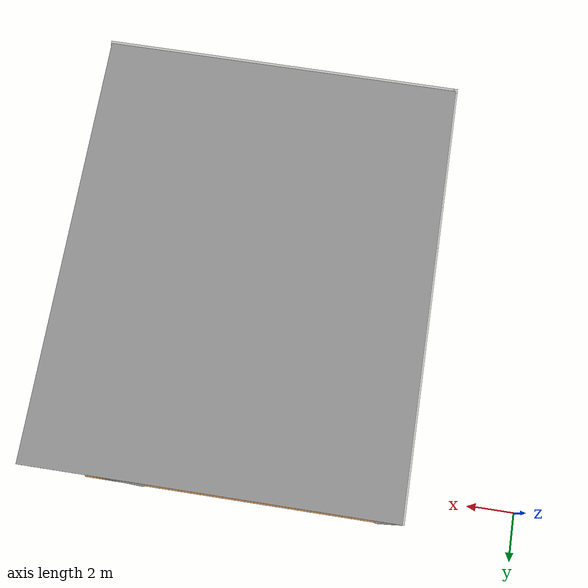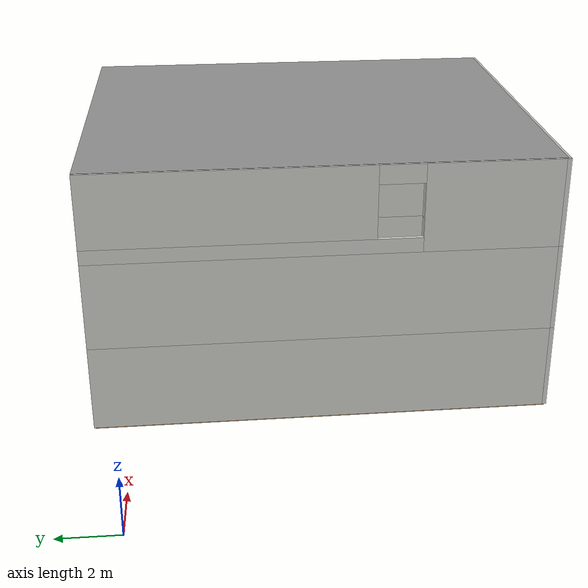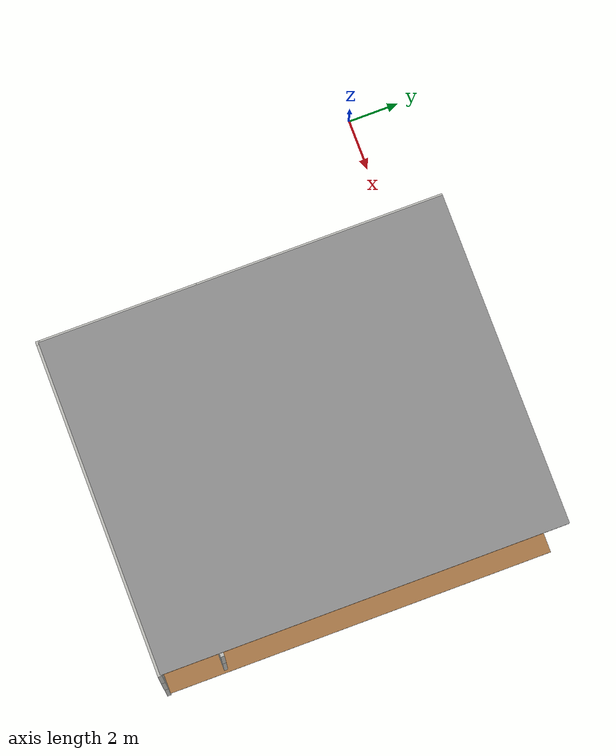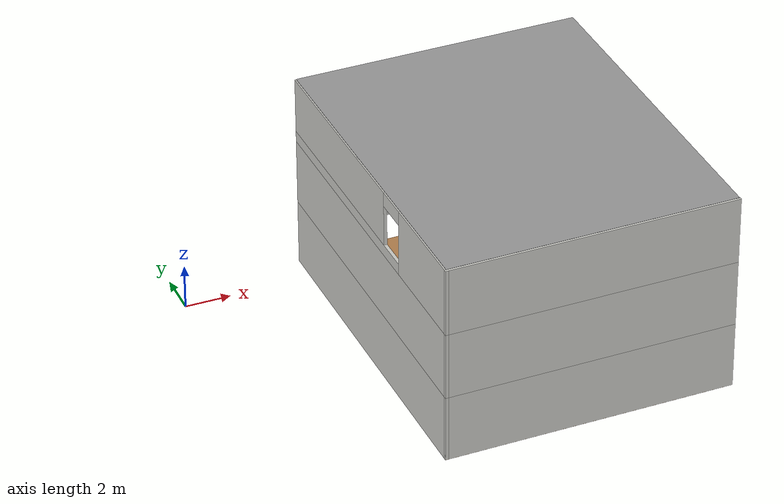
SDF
<sdf version="1.6">
 <model name="add_competition_building">
  <link name="Wall_239">
   <pose>12 -14.1135 0 0 -0 3.14159</pose>
   <visual name="Wall_239_Visual">
    <pose>0 0 1.5 0 -0 0</pose>
    <geometry><box><size>12.75 0.15 3</size></box></geometry>
    <material>
     <script><uri>file://media/materials/scripts/gazebo.material</uri><name>Gazebo/CeilingTiled</name></script>
     <ambient>1 1 1 1</ambient>
     <shader type="pixel"/>
    </material>
    <meta><layer>0</layer></meta>
   </visual>
   <collision name="Wall_239_Collision">
    <pose>0 0 1.5 0 -0 0</pose>
    <geometry><box><size>12.75 0.15 3</size></box></geometry>
    <surface>
     <friction>
      <ode><mu>1</mu><mu2>1</mu2><fdir1>0 0 0</fdir1><slip1>0</slip1><slip2>0</slip2></ode>
      <torsional>
       <coefficient>1</coefficient>
       <patch_radius>0</patch_radius>
       <surface_radius>0</surface_radius>
       <use_patch_radius>1</use_patch_radius>
       <ode><slip>0</slip></ode>
      </torsional>
     </friction>
     <bounce><restitution_coefficient>0</restitution_coefficient><threshold>1e+06</threshold></bounce>
     <contact>
      <collide_without_contact>0</collide_without_contact>
      <collide_without_contact_bitmask>1</collide_without_contact_bitmask>
      <collide_bitmask>1</collide_bitmask>
      <ode>
       <soft_cfm>0</soft_cfm>
       <soft_erp>0.2</soft_erp>
       <kp>1e+13</kp>
       <kd>1</kd>
       <max_vel>0.01</max_vel>
       <min_depth>0</min_depth>
      </ode>
      <bullet>
       <split_impulse>1</split_impulse>
       <split_impulse_penetration_threshold>-0.01</split_impulse_penetration_threshold>
       <soft_cfm>0</soft_cfm>
       <soft_erp>0.2</soft_erp>
       <kp>1e+13</kp>
       <kd>1</kd>
      </bullet>
     </contact>
    </surface>
   </collision>
  </link>
  <link name="Wall_240">
   <pose>5.7 -6.4385 0 0 -0 1.5708</pose>
   <visual name="Wall_240_Visual">
    <pose>0 0 1.5 0 -0 0</pose>
    <geometry><box><size>15.5 0.15 3</size></box></geometry>
    <material>
     <script><uri>file://media/materials/scripts/gazebo.material</uri><name>Gazebo/CeilingTiled</name></script>
     <ambient>1 1 1 1</ambient>
     <shader type="pixel"/>
    </material>
    <meta><layer>0</layer></meta>
   </visual>
   <collision name="Wall_240_Collision">
    <pose>0 0 1.5 0 -0 0</pose>
    <geometry><box><size>15.5 0.15 3</size></box></geometry>
    <surface>
     <friction>
      <ode><mu>1</mu><mu2>1</mu2><fdir1>0 0 0</fdir1><slip1>0</slip1><slip2>0</slip2></ode>
      <torsional>
       <coefficient>1</coefficient>
       <patch_radius>0</patch_radius>
       <surface_radius>0</surface_radius>
       <use_patch_radius>1</use_patch_radius>
       <ode><slip>0</slip></ode>
      </torsional>
     </friction>
     <bounce><restitution_coefficient>0</restitution_coefficient><threshold>1e+06</threshold></bounce>
     <contact>
      <collide_without_contact>0</collide_without_contact>
      <collide_without_contact_bitmask>1</collide_without_contact_bitmask>
      <collide_bitmask>1</collide_bitmask>
      <ode>
       <soft_cfm>0</soft_cfm>
       <soft_erp>0.2</soft_erp>
       <kp>1e+13</kp>
       <kd>1</kd>
       <max_vel>0.01</max_vel>
       <min_depth>0</min_depth>
      </ode>
      <bullet>
       <split_impulse>1</split_impulse>
       <split_impulse_penetration_threshold>-0.01</split_impulse_penetration_threshold>
       <soft_cfm>0</soft_cfm>
       <soft_erp>0.2</soft_erp>
       <kp>1e+13</kp>
       <kd>1</kd>
      </bullet>
     </contact>
    </surface>
   </collision>
  </link>
  <link name="Wall_265">
   <pose>15.8 -5.3135 0 0 0 -1.5708</pose>
   <visual name="Wall_265_Visual_1">
    <pose>-0.034877 0 1.5 0 -0 0</pose>
    <geometry><box><size>5.64365 0.15 3</size></box></geometry>
    <material>
     <script><uri>file://media/materials/scripts/gazebo.material</uri><name>Gazebo/CeilingTiled</name></script>
     <ambient>1 1 1 1</ambient>
     <shader type="pixel"/>
    </material>
    <meta><layer>0</layer></meta>
   </visual>
   <visual name="Wall_265_Visual_3">
    <pose>-3.3067 0 2.5 0 -0 0</pose>
    <geometry><box><size>0.9 0.15 1</size></box></geometry>
    <material>
     <script><uri>file://media/materials/scripts/gazebo.material</uri><name>Gazebo/CeilingTiled</name></script>
     <ambient>1 1 1 1</ambient>
     <shader type="pixel"/>
    </material>
    <meta><layer>0</layer></meta>
   </visual>
   <visual name="Wall_265_Visual_2">
    <pose>5.15597 0 1.5 0 -0 0</pose>
    <geometry><box><size>2.93805 0.15 3</size></box></geometry>
    <material>
     <script><uri>file://media/materials/scripts/gazebo.material</uri><name>Gazebo/CeilingTiled</name></script>
     <ambient>1 1 1 1</ambient>
     <shader type="pixel"/>
    </material>
    <meta><layer>0</layer></meta>
   </visual>
   <visual name="Wall_265_Visual_0">
    <pose>-5.19085 0 1.5 0 -0 0</pose>
    <geometry><box><size>2.8683 0.15 3</size></box></geometry>
    <material>
     <script><uri>file://media/materials/scripts/gazebo.material</uri><name>Gazebo/CeilingTiled</name></script>
     <ambient>1 1 1 1</ambient>
     <shader type="pixel"/>
    </material>
    <meta><layer>0</layer></meta>
   </visual>
   <visual name="Wall_265_Visual_4">
    <pose>3.23695 0 2.5 0 -0 0</pose>
    <geometry><box><size>0.9 0.15 1</size></box></geometry>
    <material>
     <script><uri>file://media/materials/scripts/gazebo.material</uri><name>Gazebo/CeilingTiled</name></script>
     <ambient>1 1 1 1</ambient>
     <shader type="pixel"/>
    </material>
    <meta><layer>0</layer></meta>
   </visual>
   <collision name="Wall_265_Collision_1">
    <pose>-0.034877 0 1.5 0 -0 0</pose>
    <geometry><box><size>5.64365 0.15 3</size></box></geometry>
    <surface>
     <friction>
      <ode><mu>1</mu><mu2>1</mu2><fdir1>0 0 0</fdir1><slip1>0</slip1><slip2>0</slip2></ode>
      <torsional>
       <coefficient>1</coefficient>
       <patch_radius>0</patch_radius>
       <surface_radius>0</surface_radius>
       <use_patch_radius>1</use_patch_radius>
       <ode><slip>0</slip></ode>
      </torsional>
     </friction>
     <bounce><restitution_coefficient>0</restitution_coefficient><threshold>1e+06</threshold></bounce>
     <contact>
      <collide_without_contact>0</collide_without_contact>
      <collide_without_contact_bitmask>1</collide_without_contact_bitmask>
      <collide_bitmask>1</collide_bitmask>
      <ode>
       <soft_cfm>0</soft_cfm>
       <soft_erp>0.2</soft_erp>
       <kp>1e+13</kp>
       <kd>1</kd>
       <max_vel>0.01</max_vel>
       <min_depth>0</min_depth>
      </ode>
      <bullet>
       <split_impulse>1</split_impulse>
       <split_impulse_penetration_threshold>-0.01</split_impulse_penetration_threshold>
       <soft_cfm>0</soft_cfm>
       <soft_erp>0.2</soft_erp>
       <kp>1e+13</kp>
       <kd>1</kd>
      </bullet>
     </contact>
    </surface>
   </collision>
   <collision name="Wall_265_Collision_4">
    <pose>3.23695 0 2.5 0 -0 0</pose>
    <geometry><box><size>0.9 0.15 1</size></box></geometry>
    <surface>
     <friction>
      <ode><mu>1</mu><mu2>1</mu2><fdir1>0 0 0</fdir1><slip1>0</slip1><slip2>0</slip2></ode>
      <torsional>
       <coefficient>1</coefficient>
       <patch_radius>0</patch_radius>
       <surface_radius>0</surface_radius>
       <use_patch_radius>1</use_patch_radius>
       <ode><slip>0</slip></ode>
      </torsional>
     </friction>
     <bounce><restitution_coefficient>0</restitution_coefficient><threshold>1e+06</threshold></bounce>
     <contact>
      <collide_without_contact>0</collide_without_contact>
      <collide_without_contact_bitmask>1</collide_without_contact_bitmask>
      <collide_bitmask>1</collide_bitmask>
      <ode>
       <soft_cfm>0</soft_cfm>
       <soft_erp>0.2</soft_erp>
       <kp>1e+13</kp>
       <kd>1</kd>
       <max_vel>0.01</max_vel>
       <min_depth>0</min_depth>
      </ode>
      <bullet>
       <split_impulse>1</split_impulse>
       <split_impulse_penetration_threshold>-0.01</split_impulse_penetration_threshold>
       <soft_cfm>0</soft_cfm>
       <soft_erp>0.2</soft_erp>
       <kp>1e+13</kp>
       <kd>1</kd>
      </bullet>
     </contact>
    </surface>
   </collision>
   <collision name="Wall_265_Collision_3">
    <pose>-3.3067 0 2.5 0 -0 0</pose>
    <geometry><box><size>0.9 0.15 1</size></box></geometry>
    <surface>
     <friction>
      <ode><mu>1</mu><mu2>1</mu2><fdir1>0 0 0</fdir1><slip1>0</slip1><slip2>0</slip2></ode>
      <torsional>
       <coefficient>1</coefficient>
       <patch_radius>0</patch_radius>
       <surface_radius>0</surface_radius>
       <use_patch_radius>1</use_patch_radius>
       <ode><slip>0</slip></ode>
      </torsional>
     </friction>
     <bounce><restitution_coefficient>0</restitution_coefficient><threshold>1e+06</threshold></bounce>
     <contact>
      <collide_without_contact>0</collide_without_contact>
      <collide_without_contact_bitmask>1</collide_without_contact_bitmask>
      <collide_bitmask>1</collide_bitmask>
      <ode>
       <soft_cfm>0</soft_cfm>
       <soft_erp>0.2</soft_erp>
       <kp>1e+13</kp>
       <kd>1</kd>
       <max_vel>0.01</max_vel>
       <min_depth>0</min_depth>
      </ode>
      <bullet>
       <split_impulse>1</split_impulse>
       <split_impulse_penetration_threshold>-0.01</split_impulse_penetration_threshold>
       <soft_cfm>0</soft_cfm>
       <soft_erp>0.2</soft_erp>
       <kp>1e+13</kp>
       <kd>1</kd>
      </bullet>
     </contact>
    </surface>
   </collision>
   <collision name="Wall_265_Collision_0">
    <pose>-5.19085 0 1.5 0 -0 0</pose>
    <geometry><box><size>2.8683 0.15 3</size></box></geometry>
    <surface>
     <friction>
      <ode><mu>1</mu><mu2>1</mu2><fdir1>0 0 0</fdir1><slip1>0</slip1><slip2>0</slip2></ode>
      <torsional>
       <coefficient>1</coefficient>
       <patch_radius>0</patch_radius>
       <surface_radius>0</surface_radius>
       <use_patch_radius>1</use_patch_radius>
       <ode><slip>0</slip></ode>
      </torsional>
     </friction>
     <bounce><restitution_coefficient>0</restitution_coefficient><threshold>1e+06</threshold></bounce>
     <contact>
      <collide_without_contact>0</collide_without_contact>
      <collide_without_contact_bitmask>1</collide_without_contact_bitmask>
      <collide_bitmask>1</collide_bitmask>
      <ode>
       <soft_cfm>0</soft_cfm>
       <soft_erp>0.2</soft_erp>
       <kp>1e+13</kp>
       <kd>1</kd>
       <max_vel>0.01</max_vel>
       <min_depth>0</min_depth>
      </ode>
      <bullet>
       <split_impulse>1</split_impulse>
       <split_impulse_penetration_threshold>-0.01</split_impulse_penetration_threshold>
       <soft_cfm>0</soft_cfm>
       <soft_erp>0.2</soft_erp>
       <kp>1e+13</kp>
       <kd>1</kd>
      </bullet>
     </contact>
    </surface>
   </collision>
   <collision name="Wall_265_Collision_2">
    <pose>5.15597 0 1.5 0 -0 0</pose>
    <geometry><box><size>2.93805 0.15 3</size></box></geometry>
    <surface>
     <friction>
      <ode><mu>1</mu><mu2>1</mu2><fdir1>0 0 0</fdir1><slip1>0</slip1><slip2>0</slip2></ode>
      <torsional>
       <coefficient>1</coefficient>
       <patch_radius>0</patch_radius>
       <surface_radius>0</surface_radius>
       <use_patch_radius>1</use_patch_radius>
       <ode><slip>0</slip></ode>
      </torsional>
     </friction>
     <bounce><restitution_coefficient>0</restitution_coefficient><threshold>1e+06</threshold></bounce>
     <contact>
      <collide_without_contact>0</collide_without_contact>
      <collide_without_contact_bitmask>1</collide_without_contact_bitmask>
      <collide_bitmask>1</collide_bitmask>
      <ode>
       <soft_cfm>0</soft_cfm>
       <soft_erp>0.2</soft_erp>
       <kp>1e+13</kp>
       <kd>1</kd>
       <max_vel>0.01</max_vel>
       <min_depth>0</min_depth>
      </ode>
      <bullet>
       <split_impulse>1</split_impulse>
       <split_impulse_penetration_threshold>-0.01</split_impulse_penetration_threshold>
       <soft_cfm>0</soft_cfm>
       <soft_erp>0.2</soft_erp>
       <kp>1e+13</kp>
       <kd>1</kd>
      </bullet>
     </contact>
    </surface>
   </collision>
  </link>
  <link name="Wall_267">
   <pose>11.9681 -11.7825 0 0 -0 3.14159</pose>
   <visual name="Wall_267_Visual">
    <pose>0 0 1.5 0 -0 0</pose>
    <geometry><box><size>12.5 0.15 3</size></box></geometry>
    <material>
     <script><uri>file://media/materials/scripts/gazebo.material</uri><name>Gazebo/CeilingTiled</name></script>
     <ambient>1 1 1 1</ambient>
     <shader type="pixel"/>
    </material>
    <meta><layer>0</layer></meta>
   </visual>
   <collision name="Wall_267_Collision">
    <pose>0 0 1.5 0 -0 0</pose>
    <geometry><box><size>12.5 0.15 3</size></box></geometry>
    <surface>
     <friction>
      <ode><mu>1</mu><mu2>1</mu2><fdir1>0 0 0</fdir1><slip1>0</slip1><slip2>0</slip2></ode>
      <torsional>
       <coefficient>1</coefficient>
       <patch_radius>0</patch_radius>
       <surface_radius>0</surface_radius>
       <use_patch_radius>1</use_patch_radius>
       <ode><slip>0</slip></ode>
      </torsional>
     </friction>
     <bounce><restitution_coefficient>0</restitution_coefficient><threshold>1e+06</threshold></bounce>
     <contact>
      <collide_without_contact>0</collide_without_contact>
      <collide_without_contact_bitmask>1</collide_without_contact_bitmask>
      <collide_bitmask>1</collide_bitmask>
      <ode>
       <soft_cfm>0</soft_cfm>
       <soft_erp>0.2</soft_erp>
       <kp>1e+13</kp>
       <kd>1</kd>
       <max_vel>0.01</max_vel>
       <min_depth>0</min_depth>
      </ode>
      <bullet>
       <split_impulse>1</split_impulse>
       <split_impulse_penetration_threshold>-0.01</split_impulse_penetration_threshold>
       <soft_cfm>0</soft_cfm>
       <soft_erp>0.2</soft_erp>
       <kp>1e+13</kp>
       <kd>1</kd>
      </bullet>
     </contact>
    </surface>
   </collision>
  </link>
  <link name="Wall_279">
   <pose>12 -14.1135 3 0 -0 3.14159</pose>
   <visual name="Wall_279_Visual">
    <pose>0 0 1.5 0 -0 0</pose>
    <geometry><box><size>12.75 0.15 3</size></box></geometry>
    <material>
     <script><uri>file://media/materials/scripts/gazebo.material</uri><name>Gazebo/CeilingTiled</name></script>
     <ambient>1 1 1 1</ambient>
     <shader type="pixel"/>
    </material>
    <meta><layer>1</layer></meta>
   </visual>
   <collision name="Wall_279_Collision">
    <pose>0 0 1.5 0 -0 0</pose>
    <geometry><box><size>12.75 0.15 3</size></box></geometry>
    <surface>
     <friction>
      <ode><mu>1</mu><mu2>1</mu2><fdir1>0 0 0</fdir1><slip1>0</slip1><slip2>0</slip2></ode>
      <torsional>
       <coefficient>1</coefficient>
       <patch_radius>0</patch_radius>
       <surface_radius>0</surface_radius>
       <use_patch_radius>1</use_patch_radius>
       <ode><slip>0</slip></ode>
      </torsional>
     </friction>
     <bounce><restitution_coefficient>0</restitution_coefficient><threshold>1e+06</threshold></bounce>
     <contact>
      <collide_without_contact>0</collide_without_contact>
      <collide_without_contact_bitmask>1</collide_without_contact_bitmask>
      <collide_bitmask>1</collide_bitmask>
      <ode>
       <soft_cfm>0</soft_cfm>
       <soft_erp>0.2</soft_erp>
       <kp>1e+13</kp>
       <kd>1</kd>
       <max_vel>0.01</max_vel>
       <min_depth>0</min_depth>
      </ode>
      <bullet>
       <split_impulse>1</split_impulse>
       <split_impulse_penetration_threshold>-0.01</split_impulse_penetration_threshold>
       <soft_cfm>0</soft_cfm>
       <soft_erp>0.2</soft_erp>
       <kp>1e+13</kp>
       <kd>1</kd>
      </bullet>
     </contact>
    </surface>
   </collision>
  </link>
  <link name="Wall_280">
   <pose>5.7 -6.4385 3 0 -0 1.5708</pose>
   <visual name="Wall_280_Visual">
    <pose>0 0 1.5 0 -0 0</pose>
    <geometry><box><size>15.5 0.15 3</size></box></geometry>
    <material>
     <script><uri>file://media/materials/scripts/gazebo.material</uri><name>Gazebo/CeilingTiled</name></script>
     <ambient>1 1 1 1</ambient>
     <shader type="pixel"/>
    </material>
    <meta><layer>1</layer></meta>
   </visual>
   <collision name="Wall_280_Collision">
    <pose>0 0 1.5 0 -0 0</pose>
    <geometry><box><size>15.5 0.15 3</size></box></geometry>
    <surface>
     <friction>
      <ode><mu>1</mu><mu2>1</mu2><fdir1>0 0 0</fdir1><slip1>0</slip1><slip2>0</slip2></ode>
      <torsional>
       <coefficient>1</coefficient>
       <patch_radius>0</patch_radius>
       <surface_radius>0</surface_radius>
       <use_patch_radius>1</use_patch_radius>
       <ode><slip>0</slip></ode>
      </torsional>
     </friction>
     <bounce><restitution_coefficient>0</restitution_coefficient><threshold>1e+06</threshold></bounce>
     <contact>
      <collide_without_contact>0</collide_without_contact>
      <collide_without_contact_bitmask>1</collide_without_contact_bitmask>
      <collide_bitmask>1</collide_bitmask>
      <ode>
       <soft_cfm>0</soft_cfm>
       <soft_erp>0.2</soft_erp>
       <kp>1e+13</kp>
       <kd>1</kd>
       <max_vel>0.01</max_vel>
       <min_depth>0</min_depth>
      </ode>
      <bullet>
       <split_impulse>1</split_impulse>
       <split_impulse_penetration_threshold>-0.01</split_impulse_penetration_threshold>
       <soft_cfm>0</soft_cfm>
       <soft_erp>0.2</soft_erp>
       <kp>1e+13</kp>
       <kd>1</kd>
      </bullet>
     </contact>
    </surface>
   </collision>
  </link>
  <link name="Wall_296">
   <pose>15.8 -5.3135 3 0 0 -1.5708</pose>
   <visual name="Wall_296_Visual">
    <pose>0 0 1.5 0 -0 0</pose>
    <geometry><box><size>13.25 0.15 3</size></box></geometry>
    <material>
     <script><uri>file://media/materials/scripts/gazebo.material</uri><name>Gazebo/CeilingTiled</name></script>
     <ambient>1 1 1 1</ambient>
     <shader type="pixel"/>
    </material>
    <meta><layer>1</layer></meta>
   </visual>
   <collision name="Wall_296_Collision">
    <pose>0 0 1.5 0 -0 0</pose>
    <geometry><box><size>13.25 0.15 3</size></box></geometry>
    <surface>
     <friction>
      <ode><mu>1</mu><mu2>1</mu2><fdir1>0 0 0</fdir1><slip1>0</slip1><slip2>0</slip2></ode>
      <torsional>
       <coefficient>1</coefficient>
       <patch_radius>0</patch_radius>
       <surface_radius>0</surface_radius>
       <use_patch_radius>1</use_patch_radius>
       <ode><slip>0</slip></ode>
      </torsional>
     </friction>
     <bounce><restitution_coefficient>0</restitution_coefficient><threshold>1e+06</threshold></bounce>
     <contact>
      <collide_without_contact>0</collide_without_contact>
      <collide_without_contact_bitmask>1</collide_without_contact_bitmask>
      <collide_bitmask>1</collide_bitmask>
      <ode>
       <soft_cfm>0</soft_cfm>
       <soft_erp>0.2</soft_erp>
       <kp>1e+13</kp>
       <kd>1</kd>
       <max_vel>0.01</max_vel>
       <min_depth>0</min_depth>
      </ode>
      <bullet>
       <split_impulse>1</split_impulse>
       <split_impulse_penetration_threshold>-0.01</split_impulse_penetration_threshold>
       <soft_cfm>0</soft_cfm>
       <soft_erp>0.2</soft_erp>
       <kp>1e+13</kp>
       <kd>1</kd>
      </bullet>
     </contact>
    </surface>
   </collision>
  </link>
  <link name="Wall_297">
   <pose>11.9681 -11.7825 3 0 -0 3.14159</pose>
   <visual name="Wall_297_Visual">
    <pose>0 0 1.5 0 -0 0</pose>
    <geometry><box><size>12.5 0.15 3</size></box></geometry>
    <material>
     <script><uri>file://media/materials/scripts/gazebo.material</uri><name>Gazebo/CeilingTiled</name></script>
     <ambient>1 1 1 1</ambient>
     <shader type="pixel"/>
    </material>
    <meta><layer>1</layer></meta>
   </visual>
   <collision name="Wall_297_Collision">
    <pose>0 0 1.5 0 -0 0</pose>
    <geometry><box><size>12.5 0.15 3</size></box></geometry>
    <surface>
     <friction>
      <ode><mu>1</mu><mu2>1</mu2><fdir1>0 0 0</fdir1><slip1>0</slip1><slip2>0</slip2></ode>
      <torsional>
       <coefficient>1</coefficient>
       <patch_radius>0</patch_radius>
       <surface_radius>0</surface_radius>
       <use_patch_radius>1</use_patch_radius>
       <ode><slip>0</slip></ode>
      </torsional>
     </friction>
     <bounce><restitution_coefficient>0</restitution_coefficient><threshold>1e+06</threshold></bounce>
     <contact>
      <collide_without_contact>0</collide_without_contact>
      <collide_without_contact_bitmask>1</collide_without_contact_bitmask>
      <collide_bitmask>1</collide_bitmask>
      <ode>
       <soft_cfm>0</soft_cfm>
       <soft_erp>0.2</soft_erp>
       <kp>1e+13</kp>
       <kd>1</kd>
       <max_vel>0.01</max_vel>
       <min_depth>0</min_depth>
      </ode>
      <bullet>
       <split_impulse>1</split_impulse>
       <split_impulse_penetration_threshold>-0.01</split_impulse_penetration_threshold>
       <soft_cfm>0</soft_cfm>
       <soft_erp>0.2</soft_erp>
       <kp>1e+13</kp>
       <kd>1</kd>
      </bullet>
     </contact>
    </surface>
   </collision>
  </link>
  <link name="Wall_334">
   <pose>12 -14.1135 6 0 -0 3.14159</pose>
   <visual name="Wall_334_Visual">
    <pose>0 0 1.5 0 -0 0</pose>
    <geometry><box><size>12.75 0.15 3</size></box></geometry>
    <material>
     <script><uri>file://media/materials/scripts/gazebo.material</uri><name>Gazebo/CeilingTiled</name></script>
     <ambient>1 1 1 1</ambient>
     <shader type="pixel"/>
    </material>
    <meta><layer>2</layer></meta>
   </visual>
   <collision name="Wall_334_Collision">
    <pose>0 0 1.5 0 -0 0</pose>
    <geometry><box><size>12.75 0.15 3</size></box></geometry>
    <surface>
     <friction>
      <ode><mu>1</mu><mu2>1</mu2><fdir1>0 0 0</fdir1><slip1>0</slip1><slip2>0</slip2></ode>
      <torsional>
       <coefficient>1</coefficient>
       <patch_radius>0</patch_radius>
       <surface_radius>0</surface_radius>
       <use_patch_radius>1</use_patch_radius>
       <ode><slip>0</slip></ode>
      </torsional>
     </friction>
     <bounce><restitution_coefficient>0</restitution_coefficient><threshold>1e+06</threshold></bounce>
     <contact>
      <collide_without_contact>0</collide_without_contact>
      <collide_without_contact_bitmask>1</collide_without_contact_bitmask>
      <collide_bitmask>1</collide_bitmask>
      <ode>
       <soft_cfm>0</soft_cfm>
       <soft_erp>0.2</soft_erp>
       <kp>1e+13</kp>
       <kd>1</kd>
       <max_vel>0.01</max_vel>
       <min_depth>0</min_depth>
      </ode>
      <bullet>
       <split_impulse>1</split_impulse>
       <split_impulse_penetration_threshold>-0.01</split_impulse_penetration_threshold>
       <soft_cfm>0</soft_cfm>
       <soft_erp>0.2</soft_erp>
       <kp>1e+13</kp>
       <kd>1</kd>
      </bullet>
     </contact>
    </surface>
   </collision>
  </link>
  <link name="Wall_335">
   <pose>5.7 -6.4385 6 0 -0 1.5708</pose>
   <visual name="Wall_335_Visual_1">
    <pose>2.29836 0 0.25 0 -0 0</pose>
    <geometry><box><size>10.9033 0.15 0.5</size></box></geometry>
    <material>
     <script><uri>file://media/materials/scripts/gazebo.material</uri><name>Gazebo/CeilingTiled</name></script>
     <ambient>1 1 1 1</ambient>
     <shader type="pixel"/>
    </material>
    <meta><layer>2</layer></meta>
   </visual>
   <visual name="Wall_335_Visual_2">
    <pose>3.04836 0 1.75 0 -0 0</pose>
    <geometry><box><size>9.40328 0.15 2.5</size></box></geometry>
    <material>
     <script><uri>file://media/materials/scripts/gazebo.material</uri><name>Gazebo/CeilingTiled</name></script>
     <ambient>1 1 1 1</ambient>
     <shader type="pixel"/>
    </material>
    <meta><layer>2</layer></meta>
   </visual>
   <visual name="Wall_335_Visual_0">
    <pose>-5.45164 0 1.5 0 -0 0</pose>
    <geometry><box><size>4.59672 0.15 3</size></box></geometry>
    <material>
     <script><uri>file://media/materials/scripts/gazebo.material</uri><name>Gazebo/CeilingTiled</name></script>
     <ambient>1 1 1 1</ambient>
     <shader type="pixel"/>
    </material>
    <meta><layer>2</layer></meta>
   </visual>
   <visual name="Wall_335_Visual_3">
    <pose>-2.40328 0 2.675 0 -0 0</pose>
    <geometry><box><size>1.5 0.15 0.65</size></box></geometry>
    <material>
     <script><uri>file://media/materials/scripts/gazebo.material</uri><name>Gazebo/CeilingTiled</name></script>
     <ambient>1 1 1 1</ambient>
     <shader type="pixel"/>
    </material>
    <meta><layer>2</layer></meta>
   </visual>
   <collision name="Wall_335_Collision_1">
    <pose>2.29836 0 0.25 0 -0 0</pose>
    <geometry><box><size>10.9033 0.15 0.5</size></box></geometry>
    <surface>
     <friction>
      <ode><mu>1</mu><mu2>1</mu2><fdir1>0 0 0</fdir1><slip1>0</slip1><slip2>0</slip2></ode>
      <torsional>
       <coefficient>1</coefficient>
       <patch_radius>0</patch_radius>
       <surface_radius>0</surface_radius>
       <use_patch_radius>1</use_patch_radius>
       <ode><slip>0</slip></ode>
      </torsional>
     </friction>
     <bounce><restitution_coefficient>0</restitution_coefficient><threshold>1e+06</threshold></bounce>
     <contact>
      <collide_without_contact>0</collide_without_contact>
      <collide_without_contact_bitmask>1</collide_without_contact_bitmask>
      <collide_bitmask>1</collide_bitmask>
      <ode>
       <soft_cfm>0</soft_cfm>
       <soft_erp>0.2</soft_erp>
       <kp>1e+13</kp>
       <kd>1</kd>
       <max_vel>0.01</max_vel>
       <min_depth>0</min_depth>
      </ode>
      <bullet>
       <split_impulse>1</split_impulse>
       <split_impulse_penetration_threshold>-0.01</split_impulse_penetration_threshold>
       <soft_cfm>0</soft_cfm>
       <soft_erp>0.2</soft_erp>
       <kp>1e+13</kp>
       <kd>1</kd>
      </bullet>
     </contact>
    </surface>
   </collision>
   <collision name="Wall_335_Collision_3">
    <pose>-2.40328 0 2.675 0 -0 0</pose>
    <geometry><box><size>1.5 0.15 0.65</size></box></geometry>
    <surface>
     <friction>
      <ode><mu>1</mu><mu2>1</mu2><fdir1>0 0 0</fdir1><slip1>0</slip1><slip2>0</slip2></ode>
      <torsional>
       <coefficient>1</coefficient>
       <patch_radius>0</patch_radius>
       <surface_radius>0</surface_radius>
       <use_patch_radius>1</use_patch_radius>
       <ode><slip>0</slip></ode>
      </torsional>
     </friction>
     <bounce><restitution_coefficient>0</restitution_coefficient><threshold>1e+06</threshold></bounce>
     <contact>
      <collide_without_contact>0</collide_without_contact>
      <collide_without_contact_bitmask>1</collide_without_contact_bitmask>
      <collide_bitmask>1</collide_bitmask>
      <ode>
       <soft_cfm>0</soft_cfm>
       <soft_erp>0.2</soft_erp>
       <kp>1e+13</kp>
       <kd>1</kd>
       <max_vel>0.01</max_vel>
       <min_depth>0</min_depth>
      </ode>
      <bullet>
       <split_impulse>1</split_impulse>
       <split_impulse_penetration_threshold>-0.01</split_impulse_penetration_threshold>
       <soft_cfm>0</soft_cfm>
       <soft_erp>0.2</soft_erp>
       <kp>1e+13</kp>
       <kd>1</kd>
      </bullet>
     </contact>
    </surface>
   </collision>
   <collision name="Wall_335_Collision_2">
    <pose>3.04836 0 1.75 0 -0 0</pose>
    <geometry><box><size>9.40328 0.15 2.5</size></box></geometry>
    <surface>
     <friction>
      <ode><mu>1</mu><mu2>1</mu2><fdir1>0 0 0</fdir1><slip1>0</slip1><slip2>0</slip2></ode>
      <torsional>
       <coefficient>1</coefficient>
       <patch_radius>0</patch_radius>
       <surface_radius>0</surface_radius>
       <use_patch_radius>1</use_patch_radius>
       <ode><slip>0</slip></ode>
      </torsional>
     </friction>
     <bounce><restitution_coefficient>0</restitution_coefficient><threshold>1e+06</threshold></bounce>
     <contact>
      <collide_without_contact>0</collide_without_contact>
      <collide_without_contact_bitmask>1</collide_without_contact_bitmask>
      <collide_bitmask>1</collide_bitmask>
      <ode>
       <soft_cfm>0</soft_cfm>
       <soft_erp>0.2</soft_erp>
       <kp>1e+13</kp>
       <kd>1</kd>
       <max_vel>0.01</max_vel>
       <min_depth>0</min_depth>
      </ode>
      <bullet>
       <split_impulse>1</split_impulse>
       <split_impulse_penetration_threshold>-0.01</split_impulse_penetration_threshold>
       <soft_cfm>0</soft_cfm>
       <soft_erp>0.2</soft_erp>
       <kp>1e+13</kp>
       <kd>1</kd>
      </bullet>
     </contact>
    </surface>
   </collision>
   <collision name="Wall_335_Collision_0">
    <pose>-5.45164 0 1.5 0 -0 0</pose>
    <geometry><box><size>4.59672 0.15 3</size></box></geometry>
    <surface>
     <friction>
      <ode><mu>1</mu><mu2>1</mu2><fdir1>0 0 0</fdir1><slip1>0</slip1><slip2>0</slip2></ode>
      <torsional>
       <coefficient>1</coefficient>
       <patch_radius>0</patch_radius>
       <surface_radius>0</surface_radius>
       <use_patch_radius>1</use_patch_radius>
       <ode><slip>0</slip></ode>
      </torsional>
     </friction>
     <bounce><restitution_coefficient>0</restitution_coefficient><threshold>1e+06</threshold></bounce>
     <contact>
      <collide_without_contact>0</collide_without_contact>
      <collide_without_contact_bitmask>1</collide_without_contact_bitmask>
      <collide_bitmask>1</collide_bitmask>
      <ode>
       <soft_cfm>0</soft_cfm>
       <soft_erp>0.2</soft_erp>
       <kp>1e+13</kp>
       <kd>1</kd>
       <max_vel>0.01</max_vel>
       <min_depth>0</min_depth>
      </ode>
      <bullet>
       <split_impulse>1</split_impulse>
       <split_impulse_penetration_threshold>-0.01</split_impulse_penetration_threshold>
       <soft_cfm>0</soft_cfm>
       <soft_erp>0.2</soft_erp>
       <kp>1e+13</kp>
       <kd>1</kd>
      </bullet>
     </contact>
    </surface>
   </collision>
  </link>
  <link name="Wall_351">
   <pose>15.8 -5.3135 6 0 0 -1.5708</pose>
   <visual name="Wall_351_Visual_2">
    <pose>5.20157 0 1.5 0 -0 0</pose>
    <geometry><box><size>2.84685 0.15 3</size></box></geometry>
    <material>
     <script><uri>file://media/materials/scripts/gazebo.material</uri><name>Gazebo/CeilingTiled</name></script>
     <ambient>1 1 1 1</ambient>
     <shader type="pixel"/>
    </material>
    <meta><layer>2</layer></meta>
   </visual>
   <visual name="Wall_351_Visual_1">
    <pose>0.090675 0 1.5 0 -0 0</pose>
    <geometry><box><size>5.69494 0.15 3</size></box></geometry>
    <material>
     <script><uri>file://media/materials/scripts/gazebo.material</uri><name>Gazebo/CeilingTiled</name></script>
     <ambient>1 1 1 1</ambient>
     <shader type="pixel"/>
    </material>
    <meta><layer>2</layer></meta>
   </visual>
   <visual name="Wall_351_Visual_4">
    <pose>3.35815 0 2.5 0 -0 0</pose>
    <geometry><box><size>0.84 0.15 1</size></box></geometry>
    <material>
     <script><uri>file://media/materials/scripts/gazebo.material</uri><name>Gazebo/CeilingTiled</name></script>
     <ambient>1 1 1 1</ambient>
     <shader type="pixel"/>
    </material>
    <meta><layer>2</layer></meta>
   </visual>
   <visual name="Wall_351_Visual_0">
    <pose>-5.1109 0 1.5 0 -0 0</pose>
    <geometry><box><size>3.0282 0.15 3</size></box></geometry>
    <material>
     <script><uri>file://media/materials/scripts/gazebo.material</uri><name>Gazebo/CeilingTiled</name></script>
     <ambient>1 1 1 1</ambient>
     <shader type="pixel"/>
    </material>
    <meta><layer>2</layer></meta>
   </visual>
   <visual name="Wall_351_Visual_3">
    <pose>-3.1768 0 2.5 0 -0 0</pose>
    <geometry><box><size>0.84 0.15 1</size></box></geometry>
    <material>
     <script><uri>file://media/materials/scripts/gazebo.material</uri><name>Gazebo/CeilingTiled</name></script>
     <ambient>1 1 1 1</ambient>
     <shader type="pixel"/>
    </material>
    <meta><layer>2</layer></meta>
   </visual>
   <collision name="Wall_351_Collision_3">
    <pose>-3.1768 0 2.5 0 -0 0</pose>
    <geometry><box><size>0.84 0.15 1</size></box></geometry>
    <surface>
     <friction>
      <ode><mu>1</mu><mu2>1</mu2><fdir1>0 0 0</fdir1><slip1>0</slip1><slip2>0</slip2></ode>
      <torsional>
       <coefficient>1</coefficient>
       <patch_radius>0</patch_radius>
       <surface_radius>0</surface_radius>
       <use_patch_radius>1</use_patch_radius>
       <ode><slip>0</slip></ode>
      </torsional>
     </friction>
     <bounce><restitution_coefficient>0</restitution_coefficient><threshold>1e+06</threshold></bounce>
     <contact>
      <collide_without_contact>0</collide_without_contact>
      <collide_without_contact_bitmask>1</collide_without_contact_bitmask>
      <collide_bitmask>1</collide_bitmask>
      <ode>
       <soft_cfm>0</soft_cfm>
       <soft_erp>0.2</soft_erp>
       <kp>1e+13</kp>
       <kd>1</kd>
       <max_vel>0.01</max_vel>
       <min_depth>0</min_depth>
      </ode>
      <bullet>
       <split_impulse>1</split_impulse>
       <split_impulse_penetration_threshold>-0.01</split_impulse_penetration_threshold>
       <soft_cfm>0</soft_cfm>
       <soft_erp>0.2</soft_erp>
       <kp>1e+13</kp>
       <kd>1</kd>
      </bullet>
     </contact>
    </surface>
   </collision>
   <collision name="Wall_351_Collision_1">
    <pose>0.090675 0 1.5 0 -0 0</pose>
    <geometry><box><size>5.69494 0.15 3</size></box></geometry>
    <surface>
     <friction>
      <ode><mu>1</mu><mu2>1</mu2><fdir1>0 0 0</fdir1><slip1>0</slip1><slip2>0</slip2></ode>
      <torsional>
       <coefficient>1</coefficient>
       <patch_radius>0</patch_radius>
       <surface_radius>0</surface_radius>
       <use_patch_radius>1</use_patch_radius>
       <ode><slip>0</slip></ode>
      </torsional>
     </friction>
     <bounce><restitution_coefficient>0</restitution_coefficient><threshold>1e+06</threshold></bounce>
     <contact>
      <collide_without_contact>0</collide_without_contact>
      <collide_without_contact_bitmask>1</collide_without_contact_bitmask>
      <collide_bitmask>1</collide_bitmask>
      <ode>
       <soft_cfm>0</soft_cfm>
       <soft_erp>0.2</soft_erp>
       <kp>1e+13</kp>
       <kd>1</kd>
       <max_vel>0.01</max_vel>
       <min_depth>0</min_depth>
      </ode>
      <bullet>
       <split_impulse>1</split_impulse>
       <split_impulse_penetration_threshold>-0.01</split_impulse_penetration_threshold>
       <soft_cfm>0</soft_cfm>
       <soft_erp>0.2</soft_erp>
       <kp>1e+13</kp>
       <kd>1</kd>
      </bullet>
     </contact>
    </surface>
   </collision>
   <collision name="Wall_351_Collision_0">
    <pose>-5.1109 0 1.5 0 -0 0</pose>
    <geometry><box><size>3.0282 0.15 3</size></box></geometry>
    <surface>
     <friction>
      <ode><mu>1</mu><mu2>1</mu2><fdir1>0 0 0</fdir1><slip1>0</slip1><slip2>0</slip2></ode>
      <torsional>
       <coefficient>1</coefficient>
       <patch_radius>0</patch_radius>
       <surface_radius>0</surface_radius>
       <use_patch_radius>1</use_patch_radius>
       <ode><slip>0</slip></ode>
      </torsional>
     </friction>
     <bounce><restitution_coefficient>0</restitution_coefficient><threshold>1e+06</threshold></bounce>
     <contact>
      <collide_without_contact>0</collide_without_contact>
      <collide_without_contact_bitmask>1</collide_without_contact_bitmask>
      <collide_bitmask>1</collide_bitmask>
      <ode>
       <soft_cfm>0</soft_cfm>
       <soft_erp>0.2</soft_erp>
       <kp>1e+13</kp>
       <kd>1</kd>
       <max_vel>0.01</max_vel>
       <min_depth>0</min_depth>
      </ode>
      <bullet>
       <split_impulse>1</split_impulse>
       <split_impulse_penetration_threshold>-0.01</split_impulse_penetration_threshold>
       <soft_cfm>0</soft_cfm>
       <soft_erp>0.2</soft_erp>
       <kp>1e+13</kp>
       <kd>1</kd>
      </bullet>
     </contact>
    </surface>
   </collision>
   <collision name="Wall_351_Collision_2">
    <pose>5.20157 0 1.5 0 -0 0</pose>
    <geometry><box><size>2.84685 0.15 3</size></box></geometry>
    <surface>
     <friction>
      <ode><mu>1</mu><mu2>1</mu2><fdir1>0 0 0</fdir1><slip1>0</slip1><slip2>0</slip2></ode>
      <torsional>
       <coefficient>1</coefficient>
       <patch_radius>0</patch_radius>
       <surface_radius>0</surface_radius>
       <use_patch_radius>1</use_patch_radius>
       <ode><slip>0</slip></ode>
      </torsional>
     </friction>
     <bounce><restitution_coefficient>0</restitution_coefficient><threshold>1e+06</threshold></bounce>
     <contact>
      <collide_without_contact>0</collide_without_contact>
      <collide_without_contact_bitmask>1</collide_without_contact_bitmask>
      <collide_bitmask>1</collide_bitmask>
      <ode>
       <soft_cfm>0</soft_cfm>
       <soft_erp>0.2</soft_erp>
       <kp>1e+13</kp>
       <kd>1</kd>
       <max_vel>0.01</max_vel>
       <min_depth>0</min_depth>
      </ode>
      <bullet>
       <split_impulse>1</split_impulse>
       <split_impulse_penetration_threshold>-0.01</split_impulse_penetration_threshold>
       <soft_cfm>0</soft_cfm>
       <soft_erp>0.2</soft_erp>
       <kp>1e+13</kp>
       <kd>1</kd>
      </bullet>
     </contact>
    </surface>
   </collision>
   <collision name="Wall_351_Collision_4">
    <pose>3.35815 0 2.5 0 -0 0</pose>
    <geometry><box><size>0.84 0.15 1</size></box></geometry>
    <surface>
     <friction>
      <ode><mu>1</mu><mu2>1</mu2><fdir1>0 0 0</fdir1><slip1>0</slip1><slip2>0</slip2></ode>
      <torsional>
       <coefficient>1</coefficient>
       <patch_radius>0</patch_radius>
       <surface_radius>0</surface_radius>
       <use_patch_radius>1</use_patch_radius>
       <ode><slip>0</slip></ode>
      </torsional>
     </friction>
     <bounce><restitution_coefficient>0</restitution_coefficient><threshold>1e+06</threshold></bounce>
     <contact>
      <collide_without_contact>0</collide_without_contact>
      <collide_without_contact_bitmask>1</collide_without_contact_bitmask>
      <collide_bitmask>1</collide_bitmask>
      <ode>
       <soft_cfm>0</soft_cfm>
       <soft_erp>0.2</soft_erp>
       <kp>1e+13</kp>
       <kd>1</kd>
       <max_vel>0.01</max_vel>
       <min_depth>0</min_depth>
      </ode>
      <bullet>
       <split_impulse>1</split_impulse>
       <split_impulse_penetration_threshold>-0.01</split_impulse_penetration_threshold>
       <soft_cfm>0</soft_cfm>
       <soft_erp>0.2</soft_erp>
       <kp>1e+13</kp>
       <kd>1</kd>
      </bullet>
     </contact>
    </surface>
   </collision>
  </link>
  <link name="Wall_352">
   <pose>10.8431 -11.7825 6 0 -0 3.14159</pose>
   <visual name="Wall_352_Visual">
    <pose>0 0 1.5 0 -0 0</pose>
    <geometry><box><size>10.25 0.15 3</size></box></geometry>
    <material>
     <script><uri>file://media/materials/scripts/gazebo.material</uri><name>Gazebo/CeilingTiled</name></script>
     <ambient>1 1 1 1</ambient>
     <shader type="pixel"/>
    </material>
    <meta><layer>2</layer></meta>
   </visual>
   <collision name="Wall_352_Collision">
    <pose>0 0 1.5 0 -0 0</pose>
    <geometry><box><size>10.25 0.15 3</size></box></geometry>
    <surface>
     <friction>
      <ode><mu>1</mu><mu2>1</mu2><fdir1>0 0 0</fdir1><slip1>0</slip1><slip2>0</slip2></ode>
      <torsional>
       <coefficient>1</coefficient>
       <patch_radius>0</patch_radius>
       <surface_radius>0</surface_radius>
       <use_patch_radius>1</use_patch_radius>
       <ode><slip>0</slip></ode>
      </torsional>
     </friction>
     <bounce><restitution_coefficient>0</restitution_coefficient><threshold>1e+06</threshold></bounce>
     <contact>
      <collide_without_contact>0</collide_without_contact>
      <collide_without_contact_bitmask>1</collide_without_contact_bitmask>
      <collide_bitmask>1</collide_bitmask>
      <ode>
       <soft_cfm>0</soft_cfm>
       <soft_erp>0.2</soft_erp>
       <kp>1e+13</kp>
       <kd>1</kd>
       <max_vel>0.01</max_vel>
       <min_depth>0</min_depth>
      </ode>
      <bullet>
       <split_impulse>1</split_impulse>
       <split_impulse_penetration_threshold>-0.01</split_impulse_penetration_threshold>
       <soft_cfm>0</soft_cfm>
       <soft_erp>0.2</soft_erp>
       <kp>1e+13</kp>
       <kd>1</kd>
      </bullet>
     </contact>
    </surface>
   </collision>
  </link>
  <link name="Wall_363">
   <pose>10.674 -5.3175 6 0 -0 3.14159</pose>
   <visual name="Wall_363_Visual">
    <pose>0 0 1.5 0 -0 0</pose>
    <geometry><box><size>10 0.15 3</size></box></geometry>
    <material>
     <script><uri>file://media/materials/scripts/gazebo.material</uri><name>Gazebo/CeilingTiled</name></script>
     <ambient>1 1 1 1</ambient>
     <shader type="pixel"/>
    </material>
    <meta><layer>2</layer></meta>
   </visual>
   <collision name="Wall_363_Collision">
    <pose>0 0 1.5 0 -0 0</pose>
    <geometry><box><size>10 0.15 3</size></box></geometry>
    <surface>
     <friction>
      <ode><mu>1</mu><mu2>1</mu2><fdir1>0 0 0</fdir1><slip1>0</slip1><slip2>0</slip2></ode>
      <torsional>
       <coefficient>1</coefficient>
       <patch_radius>0</patch_radius>
       <surface_radius>0</surface_radius>
       <use_patch_radius>1</use_patch_radius>
       <ode><slip>0</slip></ode>
      </torsional>
     </friction>
     <bounce><restitution_coefficient>0</restitution_coefficient><threshold>1e+06</threshold></bounce>
     <contact>
      <collide_without_contact>0</collide_without_contact>
      <collide_without_contact_bitmask>1</collide_without_contact_bitmask>
      <collide_bitmask>1</collide_bitmask>
      <ode>
       <soft_cfm>0</soft_cfm>
       <soft_erp>0.2</soft_erp>
       <kp>1e+13</kp>
       <kd>1</kd>
       <max_vel>0.01</max_vel>
       <min_depth>0</min_depth>
      </ode>
      <bullet>
       <split_impulse>1</split_impulse>
       <split_impulse_penetration_threshold>-0.01</split_impulse_penetration_threshold>
       <soft_cfm>0</soft_cfm>
       <soft_erp>0.2</soft_erp>
       <kp>1e+13</kp>
       <kd>1</kd>
      </bullet>
     </contact>
    </surface>
   </collision>
  </link>
  <link name="Wall_365">
   <pose>10.548 -2.0385 6 0 -0 1.5708</pose>
   <visual name="Wall_365_Visual_0">
    <pose>-1.85393 0 1.5 0 -0 0</pose>
    <geometry><box><size>2.79214 0.15 3</size></box></geometry>
    <material>
     <script><uri>file://media/materials/scripts/gazebo.material</uri><name>Gazebo/CeilingTiled</name></script>
     <ambient>1 1 1 1</ambient>
     <shader type="pixel"/>
    </material>
    <meta><layer>2</layer></meta>
   </visual>
   <visual name="Wall_365_Visual_1">
    <pose>1.81607 0 1.5 0 -0 0</pose>
    <geometry><box><size>2.86786 0.15 3</size></box></geometry>
    <material>
     <script><uri>file://media/materials/scripts/gazebo.material</uri><name>Gazebo/CeilingTiled</name></script>
     <ambient>1 1 1 1</ambient>
     <shader type="pixel"/>
    </material>
    <meta><layer>2</layer></meta>
   </visual>
   <visual name="Wall_365_Visual_2">
    <pose>-0.037863 0 2.5 0 -0 0</pose>
    <geometry><box><size>0.84 0.15 1</size></box></geometry>
    <material>
     <script><uri>file://media/materials/scripts/gazebo.material</uri><name>Gazebo/CeilingTiled</name></script>
     <ambient>1 1 1 1</ambient>
     <shader type="pixel"/>
    </material>
    <meta><layer>2</layer></meta>
   </visual>
   <collision name="Wall_365_Collision_0">
    <pose>-1.85393 0 1.5 0 -0 0</pose>
    <geometry><box><size>2.79214 0.15 3</size></box></geometry>
    <surface>
     <friction>
      <ode><mu>1</mu><mu2>1</mu2><fdir1>0 0 0</fdir1><slip1>0</slip1><slip2>0</slip2></ode>
      <torsional>
       <coefficient>1</coefficient>
       <patch_radius>0</patch_radius>
       <surface_radius>0</surface_radius>
       <use_patch_radius>1</use_patch_radius>
       <ode><slip>0</slip></ode>
      </torsional>
     </friction>
     <bounce><restitution_coefficient>0</restitution_coefficient><threshold>1e+06</threshold></bounce>
     <contact>
      <collide_without_contact>0</collide_without_contact>
      <collide_without_contact_bitmask>1</collide_without_contact_bitmask>
      <collide_bitmask>1</collide_bitmask>
      <ode>
       <soft_cfm>0</soft_cfm>
       <soft_erp>0.2</soft_erp>
       <kp>1e+13</kp>
       <kd>1</kd>
       <max_vel>0.01</max_vel>
       <min_depth>0</min_depth>
      </ode>
      <bullet>
       <split_impulse>1</split_impulse>
       <split_impulse_penetration_threshold>-0.01</split_impulse_penetration_threshold>
       <soft_cfm>0</soft_cfm>
       <soft_erp>0.2</soft_erp>
       <kp>1e+13</kp>
       <kd>1</kd>
      </bullet>
     </contact>
    </surface>
   </collision>
   <collision name="Wall_365_Collision_1">
    <pose>1.81607 0 1.5 0 -0 0</pose>
    <geometry><box><size>2.86786 0.15 3</size></box></geometry>
    <surface>
     <friction>
      <ode><mu>1</mu><mu2>1</mu2><fdir1>0 0 0</fdir1><slip1>0</slip1><slip2>0</slip2></ode>
      <torsional>
       <coefficient>1</coefficient>
       <patch_radius>0</patch_radius>
       <surface_radius>0</surface_radius>
       <use_patch_radius>1</use_patch_radius>
       <ode><slip>0</slip></ode>
      </torsional>
     </friction>
     <bounce><restitution_coefficient>0</restitution_coefficient><threshold>1e+06</threshold></bounce>
     <contact>
      <collide_without_contact>0</collide_without_contact>
      <collide_without_contact_bitmask>1</collide_without_contact_bitmask>
      <collide_bitmask>1</collide_bitmask>
      <ode>
       <soft_cfm>0</soft_cfm>
       <soft_erp>0.2</soft_erp>
       <kp>1e+13</kp>
       <kd>1</kd>
       <max_vel>0.01</max_vel>
       <min_depth>0</min_depth>
      </ode>
      <bullet>
       <split_impulse>1</split_impulse>
       <split_impulse_penetration_threshold>-0.01</split_impulse_penetration_threshold>
       <soft_cfm>0</soft_cfm>
       <soft_erp>0.2</soft_erp>
       <kp>1e+13</kp>
       <kd>1</kd>
      </bullet>
     </contact>
    </surface>
   </collision>
   <collision name="Wall_365_Collision_2">
    <pose>-0.037863 0 2.5 0 -0 0</pose>
    <geometry><box><size>0.84 0.15 1</size></box></geometry>
    <surface>
     <friction>
      <ode><mu>1</mu><mu2>1</mu2><fdir1>0 0 0</fdir1><slip1>0</slip1><slip2>0</slip2></ode>
      <torsional>
       <coefficient>1</coefficient>
       <patch_radius>0</patch_radius>
       <surface_radius>0</surface_radius>
       <use_patch_radius>1</use_patch_radius>
       <ode><slip>0</slip></ode>
      </torsional>
     </friction>
     <bounce><restitution_coefficient>0</restitution_coefficient><threshold>1e+06</threshold></bounce>
     <contact>
      <collide_without_contact>0</collide_without_contact>
      <collide_without_contact_bitmask>1</collide_without_contact_bitmask>
      <collide_bitmask>1</collide_bitmask>
      <ode>
       <soft_cfm>0</soft_cfm>
       <soft_erp>0.2</soft_erp>
       <kp>1e+13</kp>
       <kd>1</kd>
       <max_vel>0.01</max_vel>
       <min_depth>0</min_depth>
      </ode>
      <bullet>
       <split_impulse>1</split_impulse>
       <split_impulse_penetration_threshold>-0.01</split_impulse_penetration_threshold>
       <soft_cfm>0</soft_cfm>
       <soft_erp>0.2</soft_erp>
       <kp>1e+13</kp>
       <kd>1</kd>
      </bullet>
     </contact>
    </surface>
   </collision>
  </link>
  <link name="link_4_clone">
   <inertial>
    <mass>20.8847</mass>
    <inertia><ixx>412.915</ixx><ixy>0</ixy><ixz>0</ixz><iyy>278.522</iyy><iyz>0</iyz><izz>691.397</izz></inertia>
   </inertial>
   <pose>12.017 -6.38992 8.95946 0 -0 0</pose>
   <visual name="visual">
    <geometry><box><size>12.65 15.4027 0.107361</size></box></geometry>
    <material>
     <lighting>1</lighting>
     <script><uri>file://media/materials/scripts/gazebo.material</uri><name>Gazebo/Grey</name></script>
     <shader type="pixel"><normal_map>__default__</normal_map></shader>
     <ambient>0.3 0.3 0.3 1</ambient>
     <diffuse>0.7 0.7 0.7 1</diffuse>
     <specular>0.01 0.01 0.01 1</specular>
     <emissive>0 0 0 1</emissive>
    </material>
   </visual>
   <collision name="collision">
    <geometry><box><size>12.65 15.4027 0.107361</size></box></geometry>
    <surface>
     <friction>
      <ode><mu>1</mu><mu2>1</mu2><fdir1>0 0 0</fdir1><slip1>0</slip1><slip2>0</slip2></ode>
      <torsional>
       <coefficient>1</coefficient>
       <patch_radius>0</patch_radius>
       <surface_radius>0</surface_radius>
       <use_patch_radius>1</use_patch_radius>
       <ode><slip>0</slip></ode>
      </torsional>
     </friction>
     <bounce><restitution_coefficient>0</restitution_coefficient><threshold>1e+06</threshold></bounce>
     <contact>
      <collide_without_contact>0</collide_without_contact>
      <collide_without_contact_bitmask>1</collide_without_contact_bitmask>
      <collide_bitmask>1</collide_bitmask>
      <ode>
       <soft_cfm>0</soft_cfm>
       <soft_erp>0.2</soft_erp>
       <kp>1e+13</kp>
       <kd>1</kd>
       <max_vel>0.01</max_vel>
       <min_depth>0</min_depth>
      </ode>
      <bullet>
       <split_impulse>1</split_impulse>
       <split_impulse_penetration_threshold>-0.01</split_impulse_penetration_threshold>
       <soft_cfm>0</soft_cfm>
       <soft_erp>0.2</soft_erp>
       <kp>1e+13</kp>
       <kd>1</kd>
      </bullet>
     </contact>
    </surface>
   </collision>
  </link>
  <link name="link_4_clone_clone">
   <inertial>
    <mass>20.8847</mass>
    <inertia><ixx>412.915</ixx><ixy>0</ixy><ixz>0</ixz><iyy>278.522</iyy><iyz>0</iyz><izz>691.397</izz></inertia>
   </inertial>
   <pose>11.9903 -6.4242 0 0 -0 0</pose>
   <visual name="visual">
    <geometry><box><size>12.65 15.4027 0.107361</size></box></geometry>
    <material>
     <lighting>1</lighting>
     <script><uri>file://media/materials/scripts/gazebo.material</uri><name>Gazebo/WoodFloor</name></script>
     <shader type="pixel"><normal_map>__default__</normal_map></shader>
     <ambient>1 1 1 1</ambient>
     <diffuse>1 1 1 1</diffuse>
     <specular>0.01 0.01 0.01 1</specular>
     <emissive>0 0 0 1</emissive>
    </material>
   </visual>
   <collision name="collision">
    <geometry><box><size>12.65 15.4027 0.107361</size></box></geometry>
    <surface>
     <friction>
      <ode><mu>1</mu><mu2>1</mu2><fdir1>0 0 0</fdir1><slip1>0</slip1><slip2>0</slip2></ode>
      <torsional>
       <coefficient>1</coefficient>
       <patch_radius>0</patch_radius>
       <surface_radius>0</surface_radius>
       <use_patch_radius>1</use_patch_radius>
       <ode><slip>0</slip></ode>
      </torsional>
     </friction>
     <bounce><restitution_coefficient>0</restitution_coefficient><threshold>1e+06</threshold></bounce>
     <contact>
      <collide_without_contact>0</collide_without_contact>
      <collide_without_contact_bitmask>1</collide_without_contact_bitmask>
      <collide_bitmask>1</collide_bitmask>
      <ode>
       <soft_cfm>0</soft_cfm>
       <soft_erp>0.2</soft_erp>
       <kp>1e+13</kp>
       <kd>1</kd>
       <max_vel>0.01</max_vel>
       <min_depth>0</min_depth>
      </ode>
      <bullet>
       <split_impulse>1</split_impulse>
       <split_impulse_penetration_threshold>-0.01</split_impulse_penetration_threshold>
       <soft_cfm>0</soft_cfm>
       <soft_erp>0.2</soft_erp>
       <kp>1e+13</kp>
       <kd>1</kd>
      </bullet>
     </contact>
    </surface>
   </collision>
  </link>
  <static>1</static>
 </model>
</sdf>
